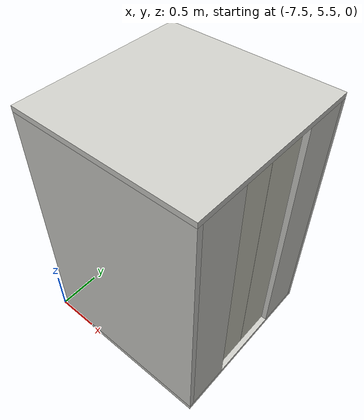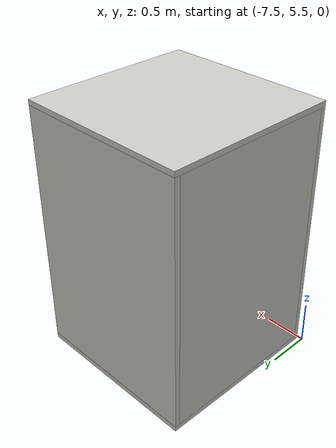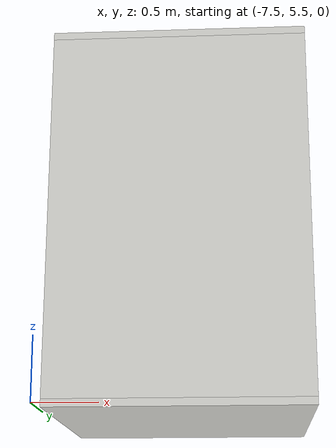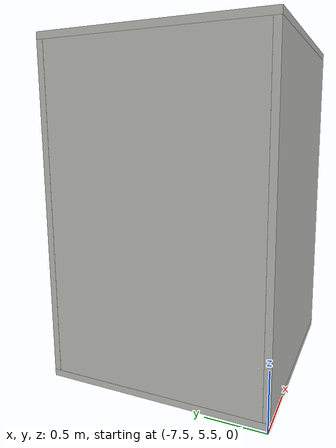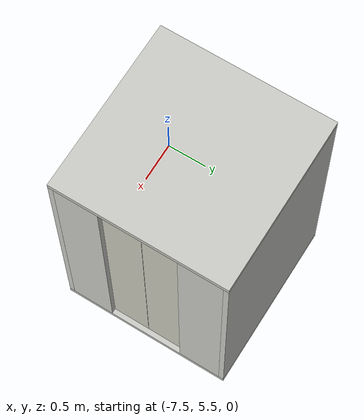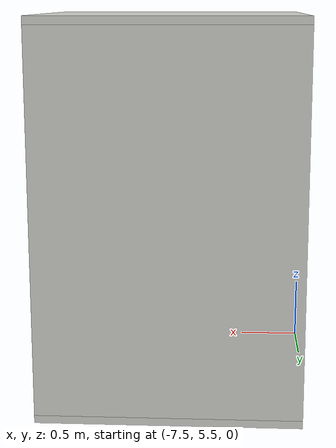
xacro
<?xml version="1.0" ?>
<robot name="elevator" xmlns:xacro="http://ros.org/wiki/xacro" xmlns:xi="http://www.w3.org/2001/XInclude" xmlns:gazebo="http://playerstage.sourceforge.net/gazebo/xmlschema/#gz" xmlns:model="http://playerstage.sourceforge.net/gazebo/xmlschema/#model" xmlns:sensor="http://playerstage.sourceforge.net/gazebo/xmlschema/#sensor" xmlns:body="http://playerstage.sourceforge.net/gazebo/xmlschema/#body" xmlns:geom="http://playerstage.sourceforge.net/gazebo/xmlschema/#geom" xmlns:joint="http://playerstage.sourceforge.net/gazebo/xmlschema/#joint" xmlns:interface="http://playerstage.sourceforge.net/gazebo/xmlschema/#interface" xmlns:rendering="http://playerstage.sourceforge.net/gazebo/xmlschema/#rendering" xmlns:renderable="http://playerstage.sourceforge.net/gazebo/xmlschema/#renderable" xmlns:controller="http://playerstage.sourceforge.net/gazebo/xmlschema/#controller" xmlns:physics="http://playerstage.sourceforge.net/gazebo/xmlschema/#physics">
    <property name="x_position" value="-1.43" />
    <property name="y_position" value="11.5" />
    <property name="x_world_offset" value="-5" />
    <property name="y_world_offset" value="-5" />
    <property name="gap_between_floors" value="7" />
    <link name="world" />
    <joint name="elevator_joint" type="prismatic">
        <axis xyz="0 0 1" />
        <parent link="world" />
        <origin rpy="0 0 0" xyz="${x_position + x_world_offset + 0}  ${y_position + y_world_offset + 0} 0" />
        <child link="elevator_block" />
        <limit effort="100.0" lower="0.0" upper="${3.025 + gap_between_floors}" velocity="5" />
    </joint>
    <joint name="eblock_ebase" type="fixed">
        <axis xyz="0 0 1" />
        <parent link="elevator_block" />
        <child link="elevator_base" />
        <origin rpy="0 0 0" xyz="0 0 0" />
    </joint>
    <joint name="ebase_eleft" type="fixed">
        <axis xyz="0 0 1" />
        <origin rpy="0 0 0" xyz="0 -.97 0" />
        <parent link="elevator_base" />
        <child link="elevator_left" />
    </joint>
    <joint name="ebase_eright" type="fixed">
        <axis xyz="0 0 1" />
        <origin rpy="0 0 0" xyz="0 .97 0" />
        <parent link="elevator_base" />
        <child link="elevator_right" />
    </joint>
    <joint name="ebase_eback" type="fixed">
        <axis xyz="0 0 1" />
        <origin rpy="0 0 1.57" xyz="-0.97 0 0" />
        <parent link="elevator_base" />
        <child link="elevator_back" />
    </joint>
    <joint name="ebase_efrontleft" type="fixed">
        <axis xyz="-1 0 0" />
        <origin rpy="0 0 1.57" xyz=".97 -0.69 0" />
        <parent link="elevator_base" />
        <child link="elevator_front_left" />
    </joint>
    <joint name="ebase_efrontright" type="fixed">
        <axis xyz="1 0 0" />
        <origin rpy="0 0 1.57" xyz=".97 0.69 0" />
        <parent link="elevator_base" />
        <child link="elevator_front_right" />
    </joint>
    <joint name="elevator_leftdoor_joint" type="prismatic">
        <axis xyz="1 0 0" />
        <origin rpy="0 0 1.57" xyz=".91 -0.251 0" />
        <limit effort="100.0" lower="-0.439" upper="0" velocity="5" />
        <parent link="elevator_base" />
        <child link="elevator_door_left" />
    </joint>
    <joint name="elevator_rightdoor_joint" type="prismatic">
        <axis xyz="1 0 0" />
        <limit effort="100.0" lower="0" upper="0.439" velocity="5" />
        <origin rpy="0 0 1.57" xyz=".91 0.251 0" />
        <parent link="elevator_base" />
        <child link="elevator_door_right" />
    </joint>
    <joint name="ebase_etop" type="fixed">
        <axis xyz="0 0 1" />
        <origin rpy="0 0 0" xyz="0 0 2.94" />
        <parent link="elevator_base" />
        <child link="elevator_top" />
    </joint>
    <link name="elevator_block">
        <inertial>
            <origin xyz="0 0 0" rpy="0 0 0" />
            <mass value="1" />
            <inertia ixx="1.0" ixy="0.0" ixz="0.0" iyy="1.0" iyz="0.0" izz="1.0" />
        </inertial>
        <visual>
            <origin xyz="0 0 0" rpy="0 0 0" />
            <geometry>
                <box size="0 0 0" />
            </geometry>
        </visual>
        <collision>
            <origin xyz="0 0 0" rpy="0 0 0" />
            <geometry>
                <box size="0 0 0" />
            </geometry>
        </collision>
    </link>
    <gazebo reference="elevator_block">
        <material>Gazebo/CeilingTiled</material>
        <dampingFactor>.005</dampingFactor>
        <selfCollide>false</selfCollide>
        <laserRetro>2000</laserRetro>
        <turnGravityOff>true</turnGravityOff>
    </gazebo>
    <link name="elevator_base">
        <inertial>
            <origin xyz="0 0 0" rpy="0 0 0" />
            <mass value="700.0" />
            <inertia ixx="1.0" ixy="0.0" ixz="0.0" iyy="1.0" iyz="0.0" izz="1.0" />
        </inertial>
        <visual>
            <origin xyz="0 0 0" rpy="0 0 0" />
            <geometry>
                <box size="2 2 .06" />
            </geometry>
        </visual>
        <collision>
            <origin xyz="0 0 0" rpy="0 0 0" />
            <geometry>
                <box size="2 2 .06" />
            </geometry>
        </collision>
    </link>
    <gazebo reference="elevator_base">
        <material>Gazebo/CeilingTiled</material>
        <dampingFactor>.005</dampingFactor>
        <selfCollide>false</selfCollide>
        <laserRetro>2000</laserRetro>
        <turnGravityOff>true</turnGravityOff>
    </gazebo>
    <link name="elevator_left">
        <inertial>
            <origin xyz="0 0 0" rpy="0 0 0" />
            <mass value="1000.0" />
            <inertia ixx="1.0" ixy="0.0" ixz="0.0" iyy="1.0" iyz="0.0" izz="1.0" />
        </inertial>
        <visual>
            <origin xyz="0 0 1.47" rpy="0 0 0" />
            <geometry>
                <box size="2 0.06 2.88" />
            </geometry>
        </visual>
        <collision>
            <origin xyz="0 0 1.47" rpy="0 0 0" />
            <geometry>
                <box size="2 0.06 2.88" />
            </geometry>
        </collision>
    </link>
    <gazebo reference="elevator_left">
        <material>Gazebo/CeilingTiled</material>
        <dampingFactor>.005</dampingFactor>
        <selfCollide>false</selfCollide>
        <laserRetro>2000</laserRetro>
        <turnGravityOff>true</turnGravityOff>
    </gazebo>
    <link name="elevator_right">
        <inertial>
            <origin xyz="0 0 0" rpy="0 0 0" />
            <mass value="1000.0" />
            <inertia ixx="1.0" ixy="0.0" ixz="0.0" iyy="1.0" iyz="0.0" izz="1.0" />
        </inertial>
        <visual>
            <origin xyz="0 0 1.47" rpy="0 0 0" />
            <geometry>
                <box size="2 0.06 2.88" />
            </geometry>
        </visual>
        <collision>
            <origin xyz="0 0 1.47" rpy="0 0 0" />
            <geometry>
                <box size="2 0.06 2.88" />
            </geometry>
        </collision>
    </link>
    <gazebo reference="elevator_right">
        <material>Gazebo/CeilingTiled</material>
        <dampingFactor>.005</dampingFactor>
        <selfCollide>false</selfCollide>
        <laserRetro>2000</laserRetro>
        <turnGravityOff>true</turnGravityOff>
    </gazebo>
    <link name="elevator_back">
        <inertial>
            <origin xyz="0 0 0" rpy="0 0 0" />
            <mass value="1000.0" />
            <inertia ixx="1.0" ixy="0.0" ixz="0.0" iyy="1.0" iyz="0.0" izz="1.0" />
        </inertial>
        <visual>
            <origin xyz="0 0 1.47" rpy="0 0 0" />
            <geometry>
                <box size="1.88 0.06 2.88" />
            </geometry>
        </visual>
        <collision>
            <origin xyz="0 0 1.47" rpy="0 0 0" />
            <geometry>
                <box size="1.88 0.06 2.88" />
            </geometry>
        </collision>
    </link>
    <gazebo reference="elevator_back">
        <material>Gazebo/CeilingTiled</material>
        <dampingFactor>.005</dampingFactor>
        <selfCollide>false</selfCollide>
        <laserRetro>2000</laserRetro>
        <turnGravityOff>true</turnGravityOff>
    </gazebo>
    <link name="elevator_top">
        <inertial>
            <origin xyz="0 0 0" rpy="0 0 0" />
            <mass value="700.0" />
            <inertia ixx="1.0" ixy="0.0" ixz="0.0" iyy="1.0" iyz="0.0" izz="1.0" />
        </inertial>
        <visual>
            <origin xyz="0 0 0" rpy="0 0 0" />
            <geometry>
                <box size="2 2 .06" />
            </geometry>
        </visual>
        <collision>
            <origin xyz="0 0 0" rpy="0 0 0" />
            <geometry>
                <box size="2 2 .06" />
            </geometry>
        </collision>
    </link>
    <gazebo reference="elevator_top">
        <material>Gazebo/CeilingTiled</material>
        <dampingFactor>.005</dampingFactor>
        <selfCollide>false</selfCollide>
        <laserRetro>2000</laserRetro>
        <turnGravityOff>true</turnGravityOff>
    </gazebo>
    <link name="elevator_front_left">
        <inertial>
            <origin xyz="0 0 0" rpy="0 0 0" />
            <mass value="400.0" />
            <inertia ixx="1.0" ixy="0.0" ixz="0.0" iyy="1.0" iyz="0.0" izz="1.0" />
        </inertial>
        <visual>
            <origin xyz="0 0 1.47" rpy="0 0 0" />
            <geometry>
                <box size=".5 0.06 2.88" />
            </geometry>
        </visual>
        <collision>
            <origin xyz="0 0 1.47" rpy="0 0 0" />
            <geometry>
                <box size=".5 0.06 2.88" />
            </geometry>
        </collision>
    </link>
    <gazebo reference="elevator_front_left">
        <material>Gazebo/CeilingTiled</material>
        <dampingFactor>.005</dampingFactor>
        <selfCollide>false</selfCollide>
        <laserRetro>2000</laserRetro>
        <turnGravityOff>true</turnGravityOff>
    </gazebo>
    <link name="elevator_front_right">
        <inertial>
            <origin xyz="0 0 0" rpy="0 0 0" />
            <mass value="400.0" />
            <inertia ixx="1.0" ixy="0.0" ixz="0.0" iyy="1.0" iyz="0.0" izz="1.0" />
        </inertial>
        <visual>
            <origin xyz="0 0 1.47" rpy="0 0 0" />
            <geometry>
                <box size=".5 0.06 2.88" />
            </geometry>
        </visual>
        <collision>
            <origin xyz="0 0 1.47" rpy="0 0 0" />
            <geometry>
                <box size=".5 0.06 2.88" />
            </geometry>
        </collision>
    </link>
    <gazebo reference="elevator_front_right">
        <material>Gazebo/CeilingTiled</material>
        <dampingFactor>.005</dampingFactor>
        <selfCollide>false</selfCollide>
        <laserRetro>2000</laserRetro>
        <turnGravityOff>true</turnGravityOff>
    </gazebo>
    <link name="elevator_door_left">
        <inertial>
            <origin xyz="0 0 0" rpy="0 0 0" />
            <mass value="5.0" />
            <inertia ixx="1.0" ixy="0.0" ixz="0.0" iyy="1.0" iyz="0.0" izz="1.0" />
        </inertial>
        <visual>
            <origin xyz="0 0 1.47" rpy="0 0 0" />
            <geometry>
                <box size=".498 0.058 2.88" />
            </geometry>
        </visual>
        <collision>
            <origin xyz="0 0 1.47" rpy="0 0 0" />
            <geometry>
                <box size=".498 0.058 2.878" />
            </geometry>
        </collision>
    </link>
    <gazebo reference="elevator_door_left">
        <material>Gazebo/PaintedWall</material>
        <dampingFactor>.005</dampingFactor>
        <selfCollide>false</selfCollide>
        <laserRetro>2000</laserRetro>
        <turnGravityOff>true</turnGravityOff>
    </gazebo>
    <link name="elevator_door_right">
        <inertial>
            <origin xyz="0 0 0" rpy="0 0 0" />
            <mass value="5.0" />
            <inertia ixx="1.0" ixy="0.0" ixz="0.0" iyy="1.0" iyz="0.0" izz="1.0" />
        </inertial>
        <visual>
            <origin xyz="0 0 1.47" rpy="0 0 0" />
            <geometry>
                <box size=".498 0.058 2.88" />
            </geometry>
        </visual>
        <collision>
            <origin xyz="0 0 1.47" rpy="0 0 0" />
            <geometry>
                <box size=".498 0.058 2.878" />
            </geometry>
        </collision>
    </link>
    <gazebo reference="elevator_door_right">
        <material>Gazebo/PaintedWall</material>
        <dampingFactor>.005</dampingFactor>
        <selfCollide>false</selfCollide>
        <laserRetro>2000</laserRetro>
        <turnGravityOff>true</turnGravityOff>
    </gazebo>
    <gazebo>
        <controller:gazebo_ros_p3d name="p3d_elevator_controller" plugin="libgazebo_ros_p3d.so">
            <alwaysOn>true</alwaysOn>
            <updateRate>100.0</updateRate>
            <bodyName>elevator_base</bodyName>
            <topicName>elevator_pose</topicName>
            <serviceName>elevator_pose_service</serviceName>
            <frameName>map</frameName>
            <robotNamespace>elevator</robotNamespace>
            <interface:position name="p3d_elevator_position" />
        </controller:gazebo_ros_p3d>
        <transmission type="pr2_mechanism_model/SimpleTransmission" name="elevator_trans">
            <actuator name="elevator_motor" />
            <joint name="elevator_joint" />
            <mechanicalReduction>1</mechanicalReduction>
            <motorTorqueConstant>1</motorTorqueConstant>
        </transmission>
    </gazebo>
</robot>
